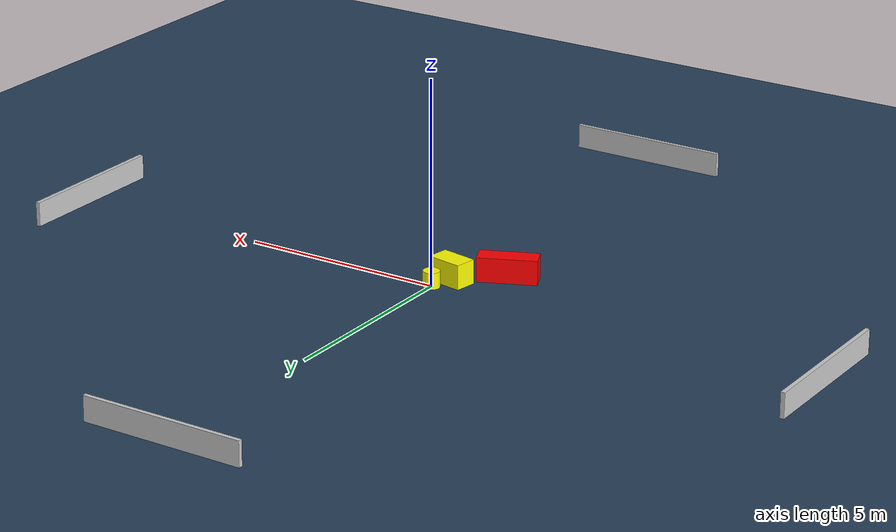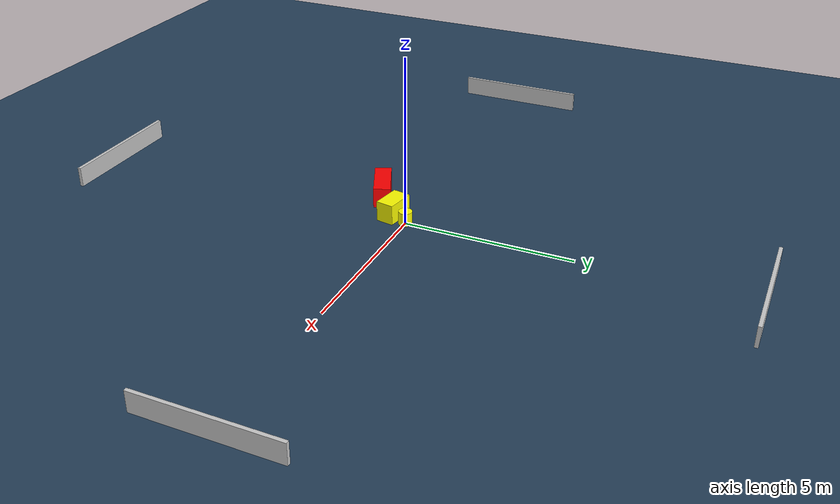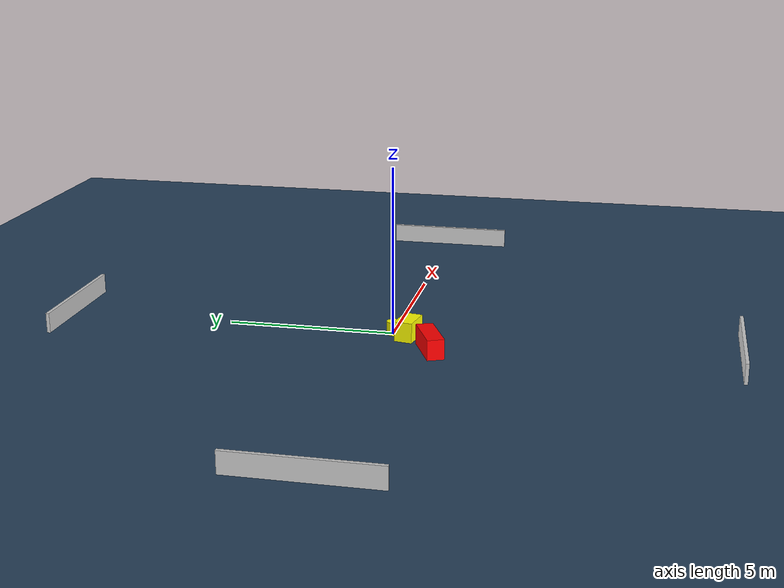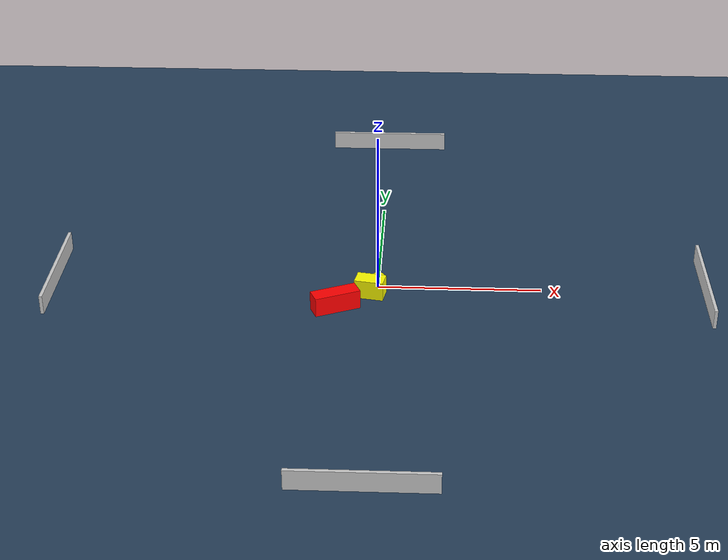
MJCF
<?xml version="1.0" ?>
<mujoco model="generated_environment">
  <option timestep="0.01" integrator="RK4" cone="elliptic"/>
  <default>
    <geom density="1"/>
  </default>
  <asset>
    <texture builtin="gradient" height="3072" name="skybox" rgb1="0.3 0.5 0.7" rgb2="0 0 0" type="skybox" width="512"/>
    <texture builtin="checker" height="300" name="groundplane" rgb1="0.2 0.3 0.4" rgb2="0.1 0.2 0.3" type="2d" width="300"/>
    <material name="groundplane" reflectance="0.2" texrepeat="5 5" texture="groundplane"/>
  </asset>
  <worldbody>
    <light dir="0 0 -1" directional="true" pos="0 0 1.5"/>
    <geom condim="3" friction="0.5 0.005 0.001" material="groundplane" name="floor" pos="0 0 0" size="0 0 0.05" type="plane"/>
    <body name="walls">
      <geom name="wall_1" condim="4" pos="-10.0 0.0 0.3" rgba="0.800000011920929 0.800000011920929 0.800000011920929 1.0" size="0.05 2.0 0.3" type="box"/>
      <geom name="wall_2" condim="4" pos="10.0 0.0 0.3" rgba="0.800000011920929 0.800000011920929 0.800000011920929 1.0" size="0.05 2.0 0.3" type="box"/>
      <geom name="wall_3" condim="4" pos="0.0 -10.0 0.3" rgba="0.800000011920929 0.800000011920929 0.800000011920929 1.0" size="2.0 0.05 0.3" type="box"/>
      <geom name="wall_4" condim="4" pos="0.0 10.0 0.3" rgba="0.800000011920929 0.800000011920929 0.800000011920929 1.0" size="2.0 0.05 0.3" type="box"/>
    </body>
    <body name="robot">
      <joint name="joint_x" type="slide" pos="0 0 0" axis="1 0 0"/>
      <joint name="joint_y" type="slide" pos="0 0 0" axis="0 1 0"/>
      <geom name="robot" type="cylinder" pos="0.0 0.0 0.2" size="0.2 0.2 0.0" mass="5.0" friction="1.0 0.005 0.0001" condim="4" rgba="1.0 1.0 0.0 1.0"/>
    </body>
    <body name="obstacle_1_movable">
      <geom name="obstacle_1_movable" condim="4" pos="-0.22909620801224453 -0.4900152030139571 0.3" euler="0 0 349.9430040990174" friction="0.0 0.005 0.001" rgba="1.0 1.0 0.0 1.0" size="0.4419735007751846 0.2665008727239777 0.3" type="box" mass="0.1"/>
      <joint type="free"/>
    </body>
    <body name="obstacle_2_static">
      <geom name="obstacle_2_static" condim="4" pos="-1.2462419218169567 -1.3172703997170965 0.3" euler="0 0 23.79082337363313" friction="0.0 0.005 0.001" rgba="1.0 0.0 0.0 1.0" size="0.71084523288656 0.2506585291069308 0.3" type="box"/>
    </body>
  </worldbody>
  <actuator>
    <motor name="actuator_x" joint="joint_x" gear="1" ctrlrange="-1 1"/>
    <motor name="actuator_y" joint="joint_y" gear="1" ctrlrange="-1 1"/>
  </actuator>
</mujoco>
